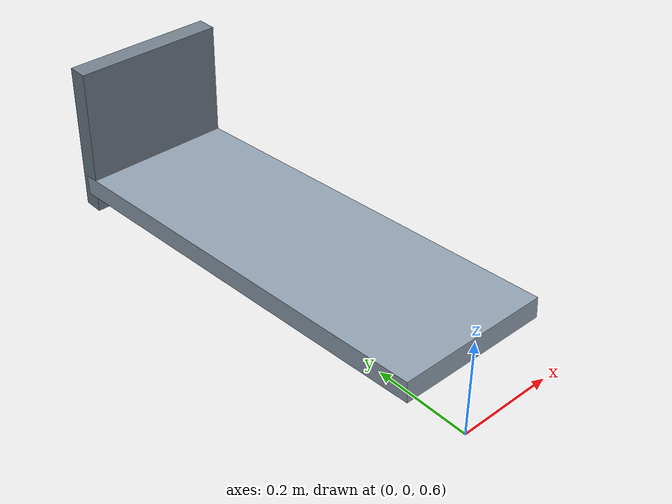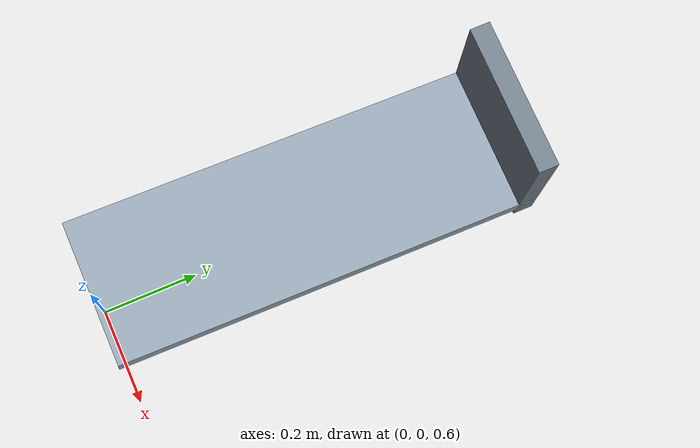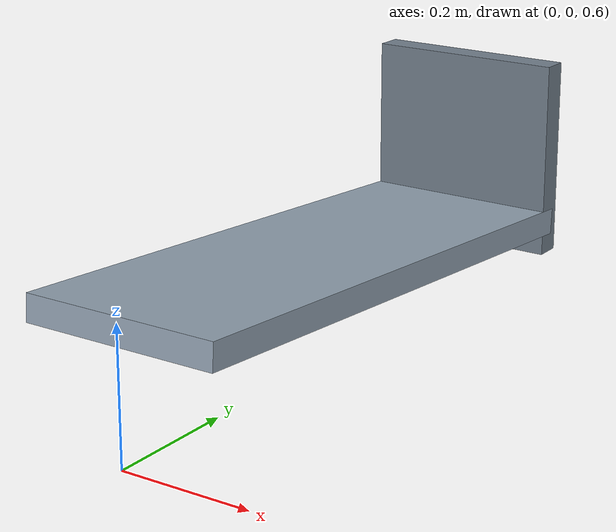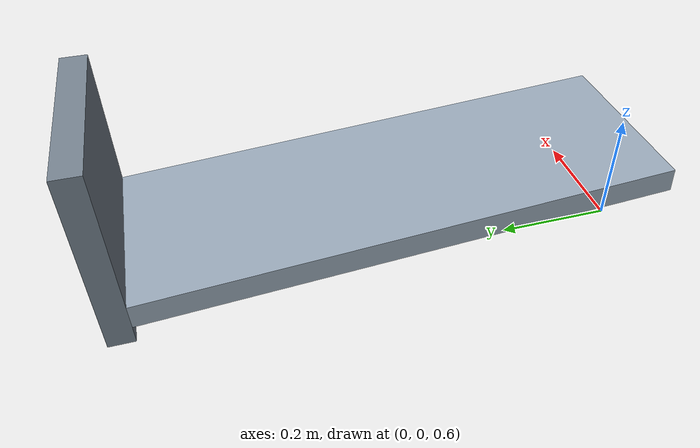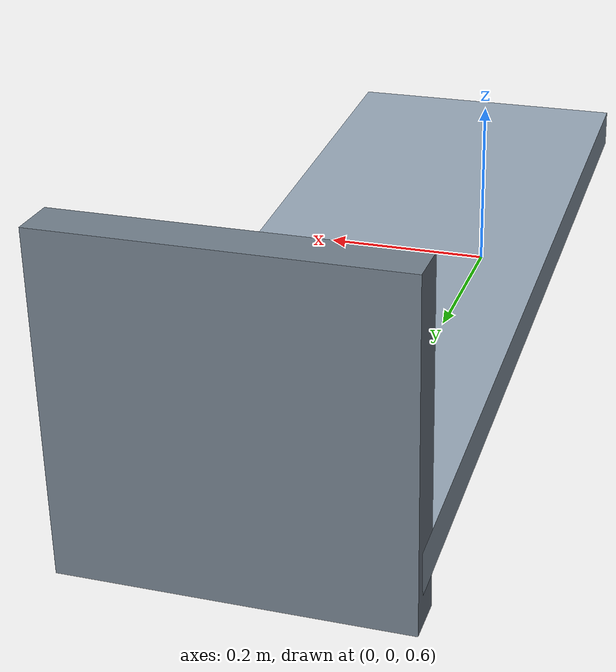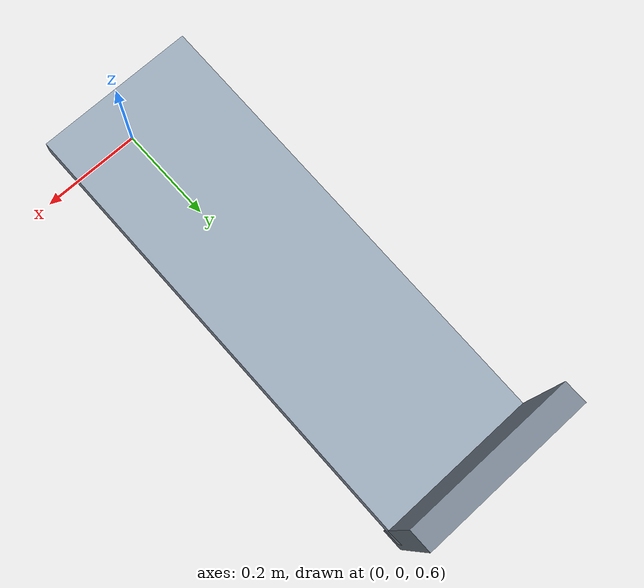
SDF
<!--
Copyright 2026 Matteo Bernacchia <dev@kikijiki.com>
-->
<?xml version="1.0"?>
<!-- SPDX-License-Identifier: MIT -->

<sdf version="1.9">
  <world name="restocking">
    <plugin filename="gz-sim-physics-system" name="gz::sim::systems::Physics"/>
    <plugin filename="gz-sim-user-commands-system" name="gz::sim::systems::UserCommands"/>
    <plugin filename="gz-sim-scene-broadcaster-system" name="gz::sim::systems::SceneBroadcaster"/>
    <plugin filename="restocker_attachment_system" name="restocker_gazebo::AttachmentSystem"/>

    <physics name="release_contact_physics" type="ignored">
      <max_step_size>0.001</max_step_size>
      <real_time_factor>1.0</real_time_factor>
      <dart>
        <collision_detector>bullet</collision_detector>
      </dart>
    </physics>

    <gravity>0 0 -9.80665</gravity>

    <!-- Floor: the fallback surface a product that falls through the bed would come to rest on,
         which the probe tells apart from a correct bed settle by height. -->
    <model name="floor">
      <static>true</static>
      <link name="floor_link">
        <collision name="floor_collision">
          <pose>0 0 -0.05 0 0 0</pose>
          <geometry><box><size>8 5 0.1</size></box></geometry>
          <surface>
            <friction>
              <ode><mu>0.9</mu><mu2>0.9</mu2></ode>
            </friction>
          </surface>
        </collision>
      </link>
    </model>

    <model name="grasp_pad">
      <static>true</static>
      <link name="pad_link">
        <collision name="pad_collision">
          <pose>0 -0.0575 0.405369261 0 0 0</pose>
          <geometry><box><size>0.12 0.145 0.810738522</size></box></geometry>
          <surface>
            <friction>
              <ode><mu>0.9</mu><mu2>0.9</mu2></ode>
            </friction>
          </surface>
        </collision>
      </link>
    </model>

    <model name="lane_bed">
      <static>true</static>
      <link name="bed_link">
        <collision name="bed_collision">
          <pose>0 0.433604871 0.758369078 -0.069813170 0 0</pose>
          <geometry><box><size>0.30 0.872124451 0.04</size></box></geometry>
          <surface>
            <friction>
              <ode><mu>0.05</mu><mu2>0.05</mu2></ode>
            </friction>
          </surface>
        </collision>
        <visual name="bed_visual">
          <pose>0 0.433604871 0.758369078 -0.069813170 0 0</pose>
          <geometry><box><size>0.30 0.872124451 0.04</size></box></geometry>
          <material>
            <ambient>0.58 0.64 0.70 1</ambient>
            <diffuse>0.58 0.64 0.70 1</diffuse>
          </material>
        </visual>
      </link>
    </model>

    <!-- The front retainer. Face plane at lane depth 0.84 m, the bed datum, which is where
         `lane_columns.py` stands the frontmost product of a column. -->
    <model name="front_retainer">
      <static>true</static>
      <link name="retainer_link">
        <collision name="retainer_collision">
          <pose>0 0.86 0.83 0 0 0</pose>
          <geometry><box><size>0.30 0.04 0.30</size></box></geometry>
        </collision>
        <visual name="retainer_visual">
          <pose>0 0.86 0.83 0 0 0</pose>
          <geometry><box><size>0.30 0.04 0.30</size></box></geometry>
          <material>
            <ambient>0.45 0.50 0.55 1</ambient>
            <diffuse>0.45 0.50 0.55 1</diffuse>
          </material>
        </visual>
      </link>
    </model>

    <model name="lane_pinned_can_01">
      <static>true</static>
      <pose>0 0.807000000 0.813456541 -0.069813170 0 0</pose>
      <link name="product_body">
        <collision name="product_collision">
          <geometry><cylinder><radius>0.033</radius><length>0.122</length></cylinder></geometry>
        </collision>
        <inertial>
          <mass>0.355</mass>
          <inertia>
            <ixx>0.0005</ixx><iyy>0.0005</iyy><izz>0.0002</izz>
          </inertia>
        </inertial>
      </link>
    </model>
    <model name="lane_pinned_can_02">
      <static>true</static>
      <pose>0 0.741160773 0.818060468 -0.069813170 0 0</pose>
      <link name="product_body">
        <collision name="product_collision">
          <geometry><cylinder><radius>0.033</radius><length>0.122</length></cylinder></geometry>
        </collision>
        <inertial>
          <mass>0.355</mass>
          <inertia>
            <ixx>0.0005</ixx><iyy>0.0005</iyy><izz>0.0002</izz>
          </inertia>
        </inertial>
      </link>
    </model>
    <model name="lane_pinned_can_03">
      <static>true</static>
      <pose>0 0.675321545 0.822664395 -0.069813170 0 0</pose>
      <link name="product_body">
        <collision name="product_collision">
          <geometry><cylinder><radius>0.033</radius><length>0.122</length></cylinder></geometry>
        </collision>
        <inertial>
          <mass>0.355</mass>
          <inertia>
            <ixx>0.0005</ixx><iyy>0.0005</iyy><izz>0.0002</izz>
          </inertia>
        </inertial>
      </link>
    </model>

    <model name="restocker">
      <pose>0 -0.032 1.011738522 3.141592654 0 0</pose>
      <link name="gripper">
        <inertial>
          <mass>1.2</mass>
          <inertia>
            <ixx>0.0017</ixx><iyy>0.0031</iyy><izz>0.0036</izz>
          </inertia>
        </inertial>
        <collision name="palm_collision">
          <pose>0 0 0.035 0 0 0</pose>
          <geometry><box><size>0.16 0.11 0.07</size></box></geometry>
        </collision>
      </link>
      <link name="chassis">
        <inertial>
          <mass>20.0</mass>
          <inertia>
            <ixx>1.0</ixx><iyy>1.0</iyy><izz>1.0</izz>
          </inertia>
        </inertial>
      </link>
      <joint name="chassis_world_joint" type="fixed">
        <parent>world</parent>
        <child>chassis</child>
      </joint>
      <joint name="carry_joint" type="prismatic">
        <parent>chassis</parent>
        <child>gripper</child>
        <axis>
          <!-- Chassis and model frames both carry the model's roll pi, so local -y is world +y:
               a positive position is travel toward the retainer. -->
          <xyz>0 -1 0</xyz>
          <limit>
            <lower>-0.05</lower>
            <upper>0.25</upper>
            <effort>80</effort>
            <velocity>0.05</velocity>
          </limit>
          <dynamics><damping>5</damping></dynamics>
        </axis>
      </joint>

      <link name="left_finger">
        <pose relative_to="gripper">0 0.062 0.07 0 0 0</pose>
        <inertial>
          <pose>0 0 0.07 0 0 0</pose>
          <mass>0.18</mass>
          <inertia>
            <ixx>0.0003</ixx><iyy>0.0003</iyy><izz>0.0001</izz>
          </inertia>
        </inertial>
        <collision name="left_finger_collision">
          <pose>0 0 0.0625 0 0 0</pose>
          <geometry><box><size>0.035 0.018 0.125</size></box></geometry>
        </collision>
      </link>
      <joint name="left_finger_joint" type="prismatic">
        <pose relative_to="gripper">0 0.03 0.07 0 0 0</pose>
        <parent>gripper</parent>
        <child>left_finger</child>
        <axis>
          <xyz>0 1 0</xyz>
          <limit><lower>0</lower><upper>0.035</upper><effort>100</effort><velocity>1</velocity></limit>
          <dynamics><damping>2</damping></dynamics>
        </axis>
      </joint>

      <link name="right_finger">
        <pose relative_to="gripper">0 -0.062 0.07 0 0 0</pose>
        <inertial>
          <pose>0 0 0.07 0 0 0</pose>
          <mass>0.18</mass>
          <inertia>
            <ixx>0.0003</ixx><iyy>0.0003</iyy><izz>0.0001</izz>
          </inertia>
        </inertial>
        <collision name="right_finger_collision">
          <pose>0 0 0.0625 0 0 0</pose>
          <geometry><box><size>0.035 0.018 0.125</size></box></geometry>
        </collision>
      </link>
      <joint name="right_finger_joint" type="prismatic">
        <pose relative_to="gripper">0 -0.03 0.07 0 0 0</pose>
        <parent>gripper</parent>
        <child>right_finger</child>
        <axis>
          <xyz>0 -1 0</xyz>
          <limit><lower>0</lower><upper>0.035</upper><effort>100</effort><velocity>1</velocity></limit>
          <dynamics><damping>2</damping></dynamics>
        </axis>
      </joint>

      <plugin filename="gz-sim-joint-position-controller-system"
              name="gz::sim::systems::JointPositionController">
        <joint_name>left_finger_joint</joint_name>
        <topic>/release_contact/left_finger_position</topic>
        <initial_position>0.032</initial_position>
        <use_velocity_commands>true</use_velocity_commands>
        <cmd_max>1.0</cmd_max>
      </plugin>
      <plugin filename="gz-sim-joint-position-controller-system"
              name="gz::sim::systems::JointPositionController">
        <joint_name>right_finger_joint</joint_name>
        <topic>/release_contact/right_finger_position</topic>
        <initial_position>0.032</initial_position>
        <use_velocity_commands>true</use_velocity_commands>
        <cmd_max>1.0</cmd_max>
      </plugin>
      <plugin filename="gz-sim-joint-position-controller-system"
              name="gz::sim::systems::JointPositionController">
        <joint_name>carry_joint</joint_name>
        <topic>/release_contact/carry_position</topic>
        <initial_position>0</initial_position>
        <use_velocity_commands>true</use_velocity_commands>
        <cmd_max>15</cmd_max>
      </plugin>
      <!-- Joint states give the probe the carry and finger positions directly: the model pose
           no longer tracks the gripper once the chassis is welded to the world. -->
      <plugin filename="gz-sim-joint-state-publisher-system"
              name="gz::sim::systems::JointStatePublisher">
        <topic>/release_contact/joint_state</topic>
      </plugin>
    </model>

    <model name="stock_can_01">
      <pose>0 -0.032 0.871738522 3.141592654 0 0</pose>
      <link name="product_body">
        <inertial>
          <mass>0.355</mass>
          <inertia>
            <ixx>0.0005</ixx><iyy>0.0005</iyy><izz>0.0002</izz>
          </inertia>
        </inertial>
        <collision name="product_collision">
          <geometry><cylinder><radius>0.033</radius><length>0.122</length></cylinder></geometry>
        </collision>
      </link>
    </model>
  </world>
</sdf>
